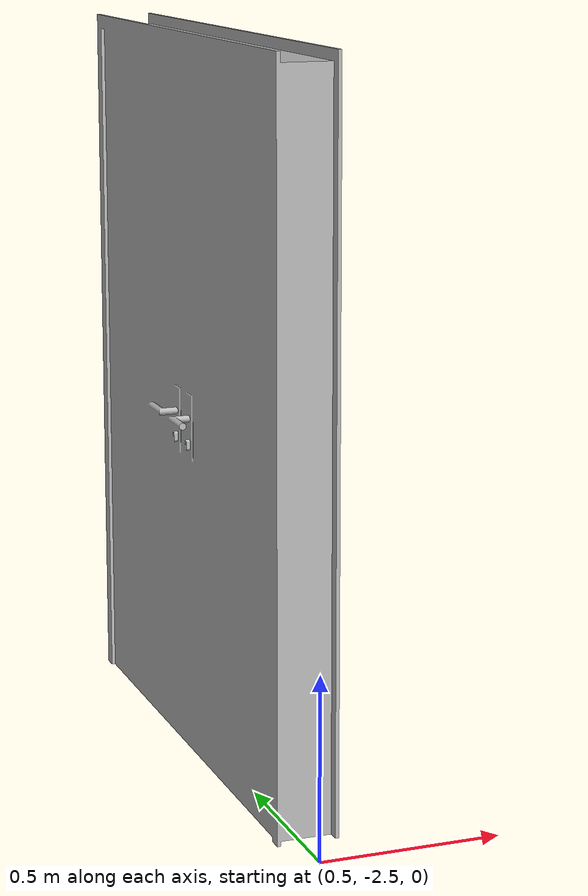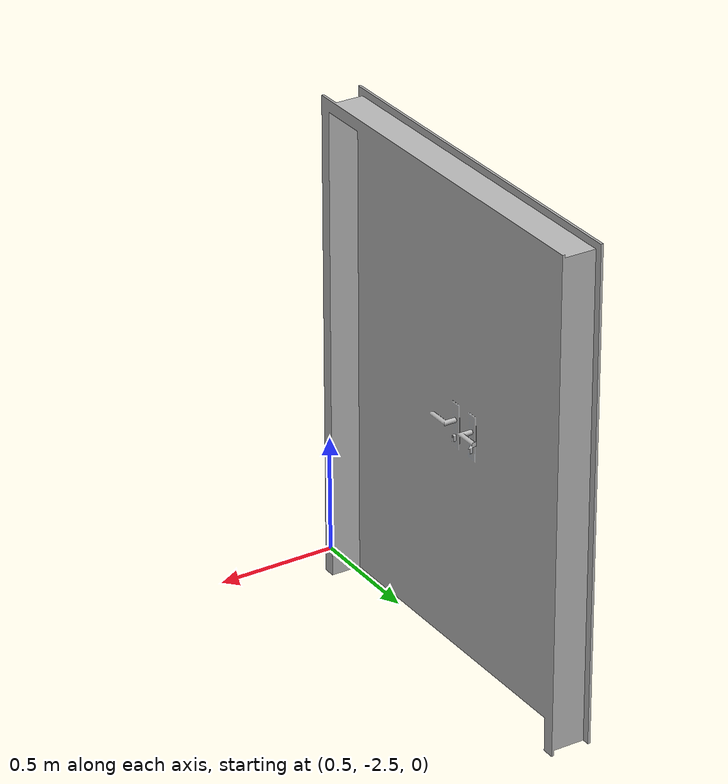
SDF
<?xml version="1.0" ?>
<sdf version="1.6">
  <model name="Door-Double-1">
  <static>true</static>
    <link name="link">
	 <collision name="collision">
		<geometry>
		  <mesh>
		    <uri>model://Door-Double-1/meshes/model.dae</uri>
		  </mesh>
		</geometry>
	      </collision>
	 <visual name="textures">
	   <geometry>
	     <mesh>
	       <uri>model://Door-Double-1/meshes/model.dae</uri>
	     </mesh>
	   </geometry>
	   <material>
	     <script>
	       <uri>model://Door-Double-1/materials/textures</uri>
	     </script>
	   </material>
	 </visual>
    </link>
  </model>
</sdf>
